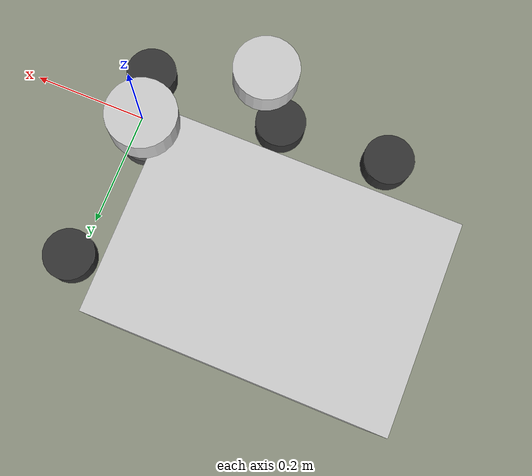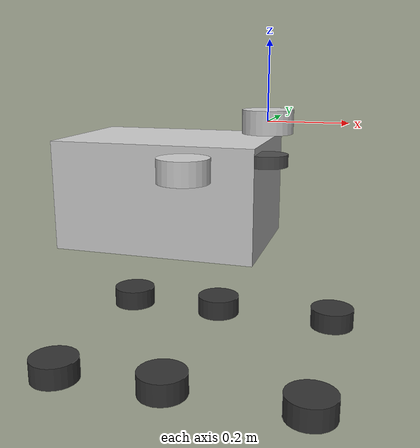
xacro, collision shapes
<?xml version="1.0" ?>
<robot name="AHR" xmlns:xacro="http://ros.org/wiki/xacro">
 <xacro:include filename="$(find turtlebot3_description)/urdf/common_properties.xacro"/>

  <link name="base_footprint"/>

  <joint name="base_joint" type="fixed">
    <parent link="base_footprint"/>
    <child link="base_link" />
    <origin xyz="-0.31 0.15 -0.22" rpy="0 0 0"/>
  </joint>

  <link name="base_link">
<!-- 시각적 형체 -->
    <visual>
      <origin xyz="0.131 -0.302 -0.155" rpy="1.57079632679 0.27 3.141692"/>       <!-- 위치 -->
      <geometry>
        <mesh filename="package://urdf_ahr/AHR_URDF/base.stl" scale="0.001 0.001 0.001"/>
      </geometry>
      <material name="base_link">
        <color rgba= "0.80 0.80 0.80 1"/>
      </material>
    </visual>
<!-- 물리적 히트박스 -->
    <collision>
      <origin xyz="0 0.0 0" rpy="0 0 0"/>
      <geometry>
        <box size="0.575 0.40 0.31"/>      <!-- 로봇 사이즈 (박스로) -->
      </geometry>
    </collision>
<!-- 물리적 특성 -->
    <inertial>
      <origin xyz="0 0 0" rpy="0 0 0"/>
      <mass value="0"/>      <!-- 질량 -->
      <inertia ixx="0.0" ixy="0.0" ixz="0.0"
               iyy="0.0" iyz="0.0"
               izz="0.0" />
    </inertial>
  </link>

  <joint name="wheel_left_joint" type="continuous">
    <parent link="base_link"/>
    <child link="wheel_left_link"/>
    <origin xyz="0.48 0.08 -0.33" rpy="-1.57079632679 0 0"/>
    <axis xyz="0 0 1"/>
  </joint>

  <link name="wheel_left_link">
    <visual>
      <origin xyz="0 0.06 0" rpy="1.57079632679 0 0"/>
      <geometry>
        <mesh filename="package://urdf_ahr/AHR_URDF/wheel.stl" />
      </geometry>
      <material name="wheel_left_link">
      <color rgba= "0.2 0.2 0.2 1"/>
      </material>
    </visual>

    <collision>
      <origin xyz="0 0.06 0" rpy="1.57079632679 0 0"/>
      <geometry>
        <cylinder length="0.06" radius="0.065"/>  <!-- length="길이(두께)" radius="반지름 -->
      </geometry>
    </collision>

    <inertial>
      <origin xyz="0 0 0" />
      <mass value="0" />
      <inertia ixx="0.0" ixy="0.0" ixz="0.0"
               iyy="0.0" iyz="0.0"
               izz="0.0" />
    </inertial>
  </link>

  <joint name="wheel_right_joint" type="continuous">
    <parent link="base_link"/>
    <child link="wheel_right_link"/>
    <origin xyz="0.48 -0.375 -0.33" rpy="-1.57079632679 0 0"/>
    <axis xyz="0 0 1"/>
  </joint>

  <link name="wheel_right_link">
    <visual>
      <origin xyz="0 0.06 -0.06" rpy="1.57079632679 0 0"/>
      <geometry>
        <mesh filename="package://urdf_ahr/AHR_URDF/wheel.stl" />
      </geometry>
      <material name="wheel_right_link">
      <color rgba= "0.2 0.2 0.2 1"/>
      </material>
    </visual>

    <collision>
      <origin xyz="0 0.06 -0.06" rpy="1.57079632679 0 0"/>
      <geometry>
        <cylinder length="0.06" radius="0.065"/>  <!-- length="길이(두께)" radius="반지름 -->
      </geometry>
    </collision>

    <inertial>
      <origin xyz="0 0 0" />
      <mass value="0" />
      <inertia ixx="0.0" ixy="0.0" ixz="0.0"
               iyy="0.0" iyz="0.0"
               izz="0.0" />
    </inertial>
  </link>

  <joint name="wheel_left_C_joint" type="continuous">
    <parent link="base_link"/>
    <child link="wheel_left_C_link"/>
    <origin xyz="0.12 0.08 -0.33" rpy="-1.57079632679 0 0"/>
    <axis xyz="0 0 1"/>
  </joint>

  <link name="wheel_left_C_link">
    <visual>
      <origin xyz="0 0.06 0" rpy="1.57079632679 0 0"/>
      <geometry>
        <mesh filename="package://urdf_ahr/AHR_URDF/wheel.stl" />
      </geometry>
      <material name="wheel_left_C_link">
      <color rgba= "0.2 0.2 0.2 1"/>
      </material>
    </visual>

    <collision>
      <origin xyz="0 0.06 0" rpy="1.57079632679 0 0"/>
      <geometry>
        <cylinder length="0.06" radius="0.065"/>  <!-- length="길이(두께)" radius="반지름 -->
      </geometry>
    </collision>

    <inertial>
      <origin xyz="0 0 0" />
      <mass value="0" />
      <inertia ixx="0.0" ixy="0.0" ixz="0.0"
               iyy="0.0" iyz="0.0"
               izz="0.0" />
    </inertial>
  </link>

<joint name="wheel_right_C_joint" type="continuous">
    <parent link="base_link"/>
    <child link="wheel_right_C_link"/>
    <origin xyz="0.12 -0.375 -0.33" rpy="-1.57079632679 0 0"/>
    <axis xyz="0 0 1"/>
  </joint>

  <link name="wheel_right_C_link">
    <visual>
      <origin xyz="0 0.06 -0.06" rpy="1.57079632679 0 0"/>
      <geometry>
        <mesh filename="package://urdf_ahr/AHR_URDF/wheel.stl" />
      </geometry>
      <material name="wheel_right_C_link">
      <color rgba= "0.2 0.2 0.2 1"/>
      </material>
    </visual>

    <collision>
      <origin xyz="0 0.06 -0.06" rpy="1.57079632679 0 0"/>
      <geometry>
        <cylinder length="0.06" radius="0.065"/>  <!-- length="길이(두께)" radius="반지름 -->
      </geometry>
    </collision>

    <inertial>
      <origin xyz="0 0 0" />
      <mass value="0" />
      <inertia ixx="0.0" ixy="0.0" ixz="0.0"
               iyy="0.0" iyz="0.0"
               izz="0.0" />
    </inertial>
  </link>

  <joint name="wheel_left_R_joint" type="continuous">
    <parent link="base_link"/>
    <child link="wheel_left_R_link"/>
    <origin xyz="-0.17 0.08 -0.33" rpy="-1.57079632679 0 0"/>
    <axis xyz="0 0 1"/>
  </joint>

  <link name="wheel_left_R_link">
    <visual>
      <origin xyz="0 0.06 0" rpy="1.57079632679 0 0"/>
      <geometry>
        <mesh filename="package://urdf_ahr/AHR_URDF/wheel.stl" />
      </geometry>
      <material name="wheel_left_R_link">
      <color rgba= "0.2 0.2 0.2 1"/>
      </material>
    </visual>

    <collision>
      <origin xyz="0 0.06 0" rpy="1.57079632679 0 0"/>
      <geometry>
        <cylinder length="0.06" radius="0.065"/>  <!-- length="길이(두께)" radius="반지름 -->
      </geometry>
    </collision>

    <inertial>
      <origin xyz="0 0 0" />
      <mass value="0" />
      <inertia ixx="0.0" ixy="0.0" ixz="0.0"
               iyy="0.0" iyz="0.0"
               izz="0.0" />
    </inertial>
  </link>

 <joint name="wheel_right_R_joint" type="continuous">
    <parent link="base_link"/>
    <child link="wheel_right_R_link"/>
    <origin xyz="-0.17 -0.385 -0.33" rpy="-1.57079632679 0 0"/>
    <axis xyz="0 0 1"/>
  </joint>

  <link name="wheel_right_R_link">
    <visual>
      <origin xyz="0 0.06 -0.06" rpy="1.57079632679 0 0"/>
      <geometry>
        <mesh filename="package://urdf_ahr/AHR_URDF/wheel.stl" />
      </geometry>
      <material name="wheel_right_R_link">
      <color rgba= "0.2 0.2 0.2 1"/>
      </material>
    </visual>

    <collision>
      <origin xyz="0 0.06 -0.06" rpy="1.57079632679 0 0"/>
      <geometry>
        <cylinder length="0.06" radius="0.065"/>  <!-- length="길이(두께)" radius="반지름 -->
      </geometry>
    </collision>

    <inertial>
      <origin xyz="0 0 0" />
      <mass value="0" />
      <inertia ixx="0.0" ixy="0.0" ixz="0.0"
               iyy="0.0" iyz="0.0"
               izz="0.0" />
    </inertial>
  </link>

<!-- imu(opencr) -->

  <joint name="imu_joint" type="fixed">
    <parent link="base_link"/>
    <child link="imu_link"/>
    <origin xyz="0 0 0" rpy="0 0 0"/>
  </joint>

  <link name="imu_link">
    <visual>
      <origin xyz="0.015 0 0" rpy="0 0 1.57"/>
      <geometry>
        <mesh filename="package://urdf_ahr/AHR_URDF/OpenCR_REVH.stl" scale="0.001 0.001 0.001"/>
      </geometry>
      <material name="dark">
      <color rgba="0.3 0.3 0.3 1.0"/>
      </material>
    </visual>

    <collision>
      <origin xyz="0 0 0" rpy="0 0 0"/>
      <geometry>
        <cylinder length="0.0315" radius="0.055"/>
      </geometry>
    </collision>

    <inertial>
      <mass value="0" />
      <origin xyz="0 0 0" />
      <inertia ixx="0.001" ixy="0.0" ixz="0.0"
               iyy="0.001" iyz="0.0"
               izz="0.001" />
    </inertial>
  </link>

<!-- LDS -->

  <joint name="scan_joint" type="fixed">
    <parent link="base_link"/>
    <child link="base_scan"/>
    <origin xyz="0.31 -0.15 0.121" rpy="0 0 0"/>
  </joint>

  <link name="base_scan">
    <visual>
      <origin xyz="0 0 0" rpy="1.57 0 0"/>
      <geometry>
        <mesh filename="package://urdf_ahr/AHR_URDF/hokuyo_utm30lx.stl" scale="0.001 0.001 0.001"/>
      </geometry>
    <material name="dark">
    <color rgba="0.3 0.3 0.3 1.0"/>
    </material>
    </visual>

    <collision>
      <origin xyz="0 0 0" rpy="0 0 0"/>
      <geometry>
        <cylinder length="0.0315" radius="0.055"/>
      </geometry>
    </collision>

    <inertial>
      <mass value="0" />
      <origin xyz="0 0 0" />
      <inertia ixx="0.001" ixy="0.0" ixz="0.0"
               iyy="0.001" iyz="0.0"
               izz="0.001" />
    </inertial>
  </link>

 <joint name="board_joint" type="fixed">
    <parent link="base_link"/>
    <child link="board_link"/>
    <origin xyz="0.15 -0.15 0.12" rpy="0 0 0"/>
    <axis xyz="0 1 0"/>
  </joint>

  <link name="board_link">
    <visual>
      <origin xyz="0 -0.2 0" rpy="3.141592 0 0"/>
      <geometry>
        <mesh filename="package://urdf_ahr/AHR_URDF/board.stl" />
      </geometry>
      <material name="base_link">
        <color rgba= "0.80 0.80 0.80 1"/>
      </material>
    </visual>

    <collision>
      <origin xyz="0 -0.2 0" rpy="3.141592 0 0"/>
      <geometry>
        <cylinder length="0.06" radius="0.065"/>  <!-- length="길이(두께)" radius="반지름 -->
      </geometry>
    </collision>

    <inertial>
      <origin xyz="0 0 0" />
      <mass value="0" />
      <inertia ixx="0.0" ixy="0.0" ixz="0.0"
               iyy="0.0" iyz="0.0"
               izz="0.0" />
    </inertial>
  </link>

<!-- ZED2 -->

 <joint name="zed_joint" type="fixed">
    <parent link="base_link"/>
    <child link="zed_base_link"/>
    <origin xyz="0.31 -0.15 0.22" rpy="0 0 0"/>
    <axis xyz="0 1 0"/>
  </joint>

  <link name="zed_base_link">
    <visual>
      <origin xyz="0 0 0" rpy="0 0 0"/>
      <geometry>
        <mesh filename="package://urdf_ahr/AHR_URDF/zed2.stl" />
      </geometry>
      <material name="zed_base_link">
        <color rgba= "0.80 0.80 0.80 0"/>
      </material>
    </visual>

    <collision>
      <origin xyz="0 0 0" rpy="0 0 0"/>
      <geometry>
        <cylinder length="0.06" radius="0.065"/>  <!-- length="길이(두께)" radius="반지름 -->
      </geometry>
    </collision>

    <inertial>
      <origin xyz="0 0 0" />
      <mass value="0" />
      <inertia ixx="0.0" ixy="0.0" ixz="0.0"
               iyy="0.0" iyz="0.0"
               izz="0.0" />
    </inertial>
  </link>

</robot>
